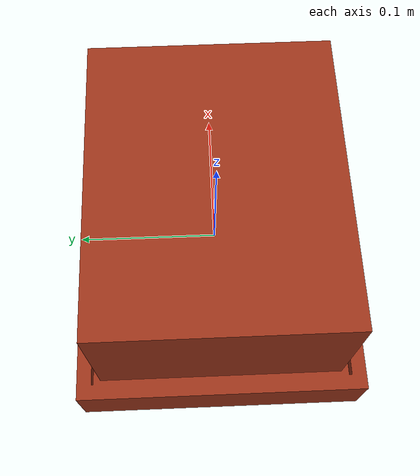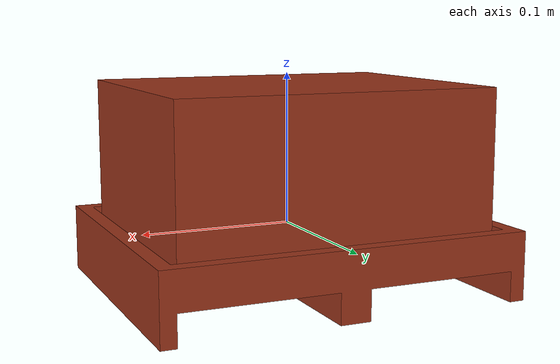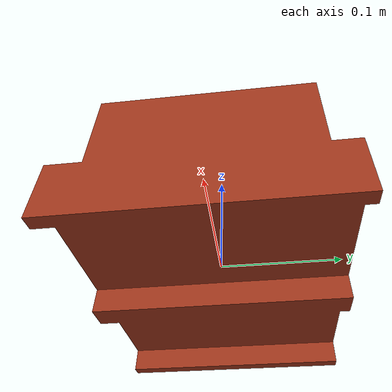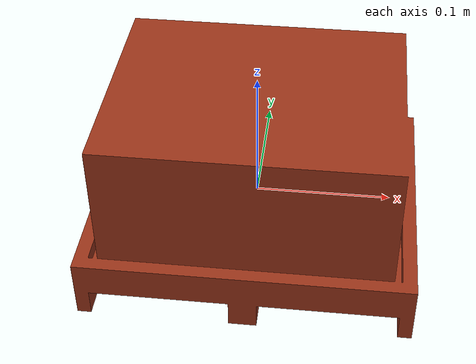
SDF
<?xml version='1.0'?>
<sdf version='1.6'>
  <model name='product_on_pallet_final'>
    <link name='link_1'>
      <inertial>
        <mass>0.36</mass>
        <inertia>
          <ixx>0.110371</ixx>
          <ixy>0.00649379</ixy>
          <ixz>0.0147177</ixz>
          <iyy>0.0963047</iyy>
          <iyz>0.0400793</iyz>
          <izz>0.0225106</izz>
        </inertia>
        <pose frame=''>0 0 0 0 -0 0</pose>
      </inertial>
      <pose frame=''>0 0 0 0 -0 0</pose>
      <gravity>1</gravity>
      <self_collide>0</self_collide>
      <kinematic>0</kinematic>
      <enable_wind>0</enable_wind>
      <visual name='visual'>
        <pose frame=''>0 0 0 0 -0 0</pose>
        <geometry>
          <mesh>
            <uri>/home/joe/test_ws/src/apollo/apollo_gazebo/models/stl_files/productOnPallet.stl</uri>
            <scale>1 1 1</scale>
          </mesh>
        </geometry>
        <material>
          <lighting>1</lighting>
          <script>
            <uri>file://media/materials/scripts/gazebo.material</uri>
            <name>Gazebo/Grey</name>
          </script>
          <ambient>0.6 0.2 0.1 1</ambient>
          <shader type='vertex'>
            <normal_map>__default__</normal_map>
          </shader>
          <diffuse>0.7 0.7 0.7 1</diffuse>
          <specular>0.01 0.01 0.01 1</specular>
          <emissive>0 0 0 1</emissive>
        </material>
        <transparency>0</transparency>
        <cast_shadows>1</cast_shadows>
      </visual>
      <collision name='collision'>
        <laser_retro>0</laser_retro>
        <max_contacts>10</max_contacts>
        <pose frame=''>0 0 0 0 -0 0</pose>
        <geometry>
          <mesh>
            <uri>/home/joe/test_ws/src/apollo/apollo_gazebo/models/stl_files/productOnPallet.stl</uri>
            <scale>1 1 1</scale>
          </mesh>
        </geometry>
        <surface>
          <friction>
            <ode>
              <mu>1</mu>
              <mu2>1</mu2>
              <fdir1>0 0.9 0</fdir1>
              <slip1>0</slip1>
              <slip2>0</slip2>
            </ode>
            <torsional>
              <coefficient>1</coefficient>
              <patch_radius>0</patch_radius>
              <surface_radius>0</surface_radius>
              <use_patch_radius>1</use_patch_radius>
              <ode>
                <slip>0</slip>
              </ode>
            </torsional>
          </friction>
          <bounce>
            <restitution_coefficient>0</restitution_coefficient>
            <threshold>1e+06</threshold>
          </bounce>
          <contact>
            <collide_without_contact>0</collide_without_contact>
            <collide_without_contact_bitmask>1</collide_without_contact_bitmask>
            <collide_bitmask>1</collide_bitmask>
            <ode>
              <soft_cfm>0</soft_cfm>
              <soft_erp>0.2</soft_erp>
              <kp>1e+13</kp>
              <kd>1</kd>
              <max_vel>0.01</max_vel>
              <min_depth>0</min_depth>
            </ode>
            <bullet>
              <split_impulse>1</split_impulse>
              <split_impulse_penetration_threshold>-0.01</split_impulse_penetration_threshold>
              <soft_cfm>0</soft_cfm>
              <soft_erp>0.2</soft_erp>
              <kp>1e+13</kp>
              <kd>1</kd>
            </bullet>
          </contact>
        </surface>
      </collision>
    </link>
    <static>0</static>
    <allow_auto_disable>0</allow_auto_disable>
  </model>
</sdf>
